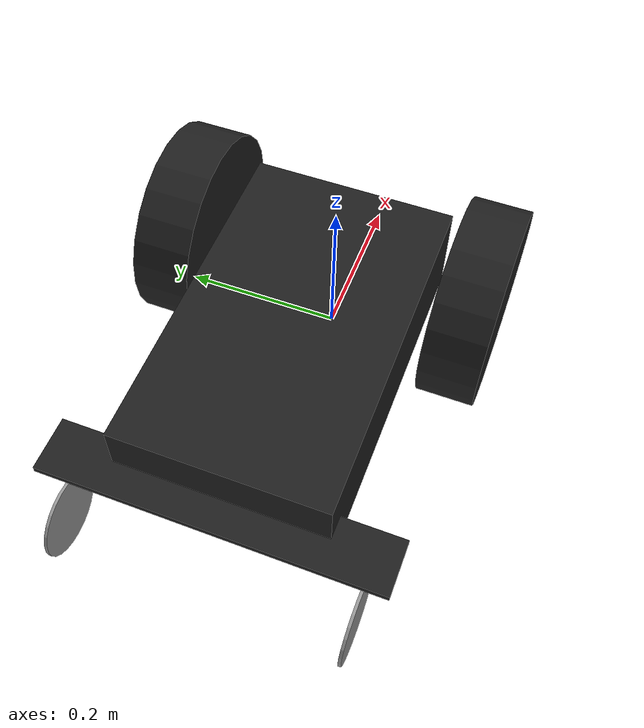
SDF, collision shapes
<sdf version='1.6'>
  <model name='2WD_rover_robotics'>
    <link name='base_footprint'>
      <pose frame=''>0 0 0 0 -0 0</pose>
      <inertial>
        <pose frame=''>-0.151308 0 0.144308 0 -0 0</pose>
        <mass>9.65</mass>
        <inertia>
          <ixx>0.091747</ixx>
          <ixy>2.64698e-23</ixy>
          <ixz>-0.00888848</ixz>
          <iyy>0.18812</iyy>
          <iyz>0</iyz>
          <izz>0.199045</izz>
        </inertia>
      </inertial>
      <collision name='base_footprint_fixed_joint_lump__base_link_collision'>
        <pose frame=''>-0.142 0 0.12 0 -0 0</pose>
        <geometry>
          <box>
            <size>0.42 0.25 0.12</size>
          </box>
        </geometry>
        <surface>
          <contact>
            <ode/>
          </contact>
          <friction>
            <ode/>
          </friction>
        </surface>
      </collision>
      <collision name='base_footprint_fixed_joint_lump__sheetmetal_link_collision_1'>
        <pose frame=''>-0.357 0 0.12 0 -0 0</pose>
        <geometry>
          <box>
            <size>0.065 0.4 0.008</size>
          </box>
        </geometry>
        <surface>
          <contact>
            <ode/>
          </contact>
          <friction>
            <ode/>
          </friction>
        </surface>
      </collision>
      <visual name='base_footprint_fixed_joint_lump__base_link_visual'>
        <pose frame=''>-0.142 0 0.175 0 -0 1.57</pose>
        <geometry>
          <mesh>
            <scale>1 1 1</scale>
            <uri>model://2WDRover/meshes/2WD_OpenRover.stl</uri>
          </mesh>
        </geometry>
        <material>
          <script>
            <name>Gazebo/FlatBlack</name>
            <uri>file://media/materials/scripts/gazebo.material</uri>
          </script>
        </material>
      </visual>
      <visual name='base_footprint_fixed_joint_lump__plate_link_visual_1'>
        <pose frame=''>-0.1365 0 0.247 0 -0 0</pose>
        <geometry>
          <box>
            <size>0.381 0.254 0.005</size>
          </box>
        </geometry>
        <material>
          <script>
            <name>Gazebo/GreyTransparent</name>
            <uri>file://media/materials/scripts/gazebo.material</uri>
          </script>
        </material>
      </visual>
      <visual name='base_footprint_fixed_joint_lump__cpu_link_visual_2'>
        <pose frame=''>-0.1397 0 0.2745 0 -0 0</pose>
        <geometry>
          <box>
            <size>0.111 0.117 0.05</size>
          </box>
        </geometry>
        <material>
          <script>
            <name>Gazebo/DarkGrey</name>
            <uri>file://media/materials/scripts/gazebo.material</uri>
          </script>
        </material>
      </visual>
      <visual name='base_footprint_fixed_joint_lump__lidar_link_visual_3'>
        <pose frame=''>-0.03175 0 0.338 0 -0 3.14</pose>
        <geometry>
          <cylinder>
            <length>0.0476</length>
            <radius>0.0381</radius>
          </cylinder>
        </geometry>
        <material>
          <script>
            <name>Gazebo/DarkGrey</name>
            <uri>file://media/materials/scripts/gazebo.material</uri>
          </script>
        </material>
      </visual>
      <visual name='base_footprint_fixed_joint_lump__imu_link_visual_4'>
        <pose frame=''>0 0 0.2496 0 -0 0</pose>
        <geometry>
          <box>
            <size>0.01 0.01 0.002</size>
          </box>
        </geometry>
        <material>
          <script>
            <name>Gazebo/Blue</name>
            <uri>file://media/materials/scripts/gazebo.material</uri>
          </script>
        </material>
      </visual>
      <visual name='base_footprint_fixed_joint_lump__sheetmetal_link_visual_5'>
        <pose frame=''>-0.35 0 0.12 1.57 0 -1.57</pose>
        <geometry>
          <mesh>
            <scale>1 1 1</scale>
            <uri>model://2WDRover/meshes/sheetmetal_part.stl</uri>
          </mesh>
        </geometry>
        <material>
          <script>
            <name>Gazebo/FlatBlack</name>
            <uri>file://media/materials/scripts/gazebo.material</uri>
          </script>
        </material>
      </visual>
      <velocity_decay/>
      <velocity_decay/>
      <velocity_decay/>
      <velocity_decay/>
      <sensor name='gazebo_lidar' type='ray'>
        <update_rate>12</update_rate>
        <plugin name='gazebo_lidar' filename='libgazebo_ros_ray_sensor.so'>
          <ros>
            <argument>~/out:=scan</argument>
            <namespace/>
          </ros>
          <output_type>sensor_msgs/LaserScan</output_type>
          <frame_name>lidar_link</frame_name>
        </plugin>
        <ray>
          <scan>
            <horizontal>
              <samples>360</samples>
              <resolution>1</resolution>
              <min_angle>-3.14159</min_angle>
              <max_angle>3.14159</max_angle>
            </horizontal>
          </scan>
          <range>
            <min>0.12</min>
            <max>3.5</max>
            <resolution>0.015</resolution>
          </range>
          <noise>
            <type>gaussian</type>
            <mean>0</mean>
            <stddev>0.01</stddev>
          </noise>
        </ray>
        <pose frame=''>-0.03175 0 0.338 0 -0 3.14</pose>
      </sensor>
      <velocity_decay/>
      <sensor name='gazebo_imu' type='imu'>
        <always_on>1</always_on>
        <update_rate>30</update_rate>
        <plugin name='gazebo_imu' filename='libgazebo_ros_imu_sensor.so'>
          <ros>
            <namespace>/imu</namespace>
            <argument>~/out:=data</argument>
          </ros>
          <frame_name>imu_link</frame_name>
        </plugin>
        <imu>
          <angular_velocity>
            <x>
              <noise type='gaussian'>
                <mean>0</mean>
                <stddev>0.0052</stddev>
              </noise>
            </x>
            <y>
              <noise type='gaussian'>
                <mean>0</mean>
                <stddev>0.0052</stddev>
              </noise>
            </y>
            <z>
              <noise type='gaussian'>
                <mean>0</mean>
                <stddev>0.0052</stddev>
              </noise>
            </z>
          </angular_velocity>
          <linear_acceleration>
            <x>
              <noise type='gaussian'>
                <mean>0</mean>
                <stddev>0.0015</stddev>
              </noise>
            </x>
            <y>
              <noise type='gaussian'>
                <mean>0</mean>
                <stddev>0.0015</stddev>
              </noise>
            </y>
            <z>
              <noise type='gaussian'>
                <mean>0</mean>
                <stddev>0.0015</stddev>
              </noise>
            </z>
          </linear_acceleration>
          <angular_velocity/>
          <linear_acceleration/>
        </imu>
        <pose frame=''>0 0 0.2496 0 -0 0</pose>
      </sensor>
      <gravity>1</gravity>
      <velocity_decay/>
    </link>
    <link name='caster_back_left_link'>
      <pose frame=''>-0.36 0.17 0.11 0 -0 0</pose>
      <inertial>
        <pose frame=''>-0.005 0 -0.03 0 -0 0</pose>
        <mass>0.41</mass>
        <inertia>
          <ixx>0.0003841</ixx>
          <ixy>0</ixy>
          <ixz>0</ixz>
          <iyy>0.0004592</iyy>
          <iyz>0</iyz>
          <izz>0.0002135</izz>
        </inertia>
      </inertial>
      <collision name='caster_back_left_link_collision'>
        <pose frame=''>-0.035 0 -0.065 1.57 0 3.14</pose>
        <geometry>
          <cylinder>
            <length>0.0035</length>
            <radius>0.05</radius>
          </cylinder>
        </geometry>
        <surface>
          <contact>
            <ode>
              <kp>200000</kp>
            </ode>
          </contact>
          <friction>
            <ode>
              <mu>0.1</mu>
              <mu2>0.6</mu2>
            </ode>
          </friction>
        </surface>
      </collision>
      <visual name='caster_back_left_link_visual'>
        <pose frame=''>0 0 0 1.57 0 3.14</pose>
        <geometry>
          <mesh>
            <scale>1 1 1</scale>
            <uri>model://2WDRover/meshes/left_caster_wheel.stl</uri>
          </mesh>
        </geometry>
        <material>
          <script>
            <name>Gazebo/Grey</name>
            <uri>file://media/materials/scripts/gazebo.material</uri>
          </script>
        </material>
      </visual>
      <gravity>1</gravity>
      <velocity_decay/>
    </link>
    <joint name='caster_back_left_joint' type='revolute'>
      <child>caster_back_left_link</child>
      <parent>base_footprint</parent>
      <axis>
        <xyz>0 0 1</xyz>
        <limit>
          <lower>-1e+16</lower>
          <upper>1e+16</upper>
        </limit>
        <dynamics>
          <damping>0.1</damping>
          <friction>0.01</friction>
          <spring_reference>0</spring_reference>
          <spring_stiffness>0</spring_stiffness>
        </dynamics>
        <use_parent_model_frame>1</use_parent_model_frame>
      </axis>
    </joint>
    <link name='caster_back_right_link'>
      <pose frame=''>-0.36 -0.17 0.11 0 -0 0</pose>
      <inertial>
        <pose frame=''>-0.005 0 -0.03 0 -0 0</pose>
        <mass>0.41</mass>
        <inertia>
          <ixx>0.0003841</ixx>
          <ixy>0</ixy>
          <ixz>0</ixz>
          <iyy>0.0004592</iyy>
          <iyz>0</iyz>
          <izz>0.0002135</izz>
        </inertia>
      </inertial>
      <collision name='caster_back_right_link_collision'>
        <pose frame=''>-0.035 0 -0.065 1.57 0 3.14</pose>
        <geometry>
          <cylinder>
            <length>0.0035</length>
            <radius>0.05</radius>
          </cylinder>
        </geometry>
        <surface>
          <contact>
            <ode>
              <kp>200000</kp>
            </ode>
          </contact>
          <friction>
            <ode>
              <mu>0.1</mu>
              <mu2>0.6</mu2>
            </ode>
          </friction>
        </surface>
      </collision>
      <visual name='caster_back_right_link_visual'>
        <pose frame=''>0 0 0 1.57 0 3.14</pose>
        <geometry>
          <mesh>
            <scale>1 1 1</scale>
            <uri>model://2WDRover/meshes/right_caster_wheel.stl</uri>
          </mesh>
        </geometry>
        <material>
          <script>
            <name>Gazebo/Grey</name>
            <uri>file://media/materials/scripts/gazebo.material</uri>
          </script>
        </material>
      </visual>
      <gravity>1</gravity>
      <velocity_decay/>
    </link>
    <joint name='caster_back_right_joint' type='revolute'>
      <child>caster_back_right_link</child>
      <parent>base_footprint</parent>
      <axis>
        <xyz>0 0 1</xyz>
        <limit>
          <lower>-1e+16</lower>
          <upper>1e+16</upper>
        </limit>
        <dynamics>
          <damping>0.1</damping>
          <friction>0.01</friction>
          <spring_reference>0</spring_reference>
          <spring_stiffness>0</spring_stiffness>
        </dynamics>
        <use_parent_model_frame>1</use_parent_model_frame>
      </axis>
    </joint>
    <link name='wheel_left_link'>
      <pose frame=''>0 0.179 0.12 -1.57 0 0</pose>
      <inertial>
        <pose frame=''>0 0 0 0 -0 3.14</pose>
        <mass>1.525</mass>
        <inertia>
          <ixx>0.006723</ixx>
          <ixy>0</ixy>
          <ixz>0</ixz>
          <iyy>0.006723</iyy>
          <iyz>0</iyz>
          <izz>0.0122</izz>
        </inertia>
      </inertial>
      <collision name='wheel_left_link_collision'>
        <pose frame=''>0 0 0 0 -0 3.14</pose>
        <geometry>
          <cylinder>
            <length>0.07</length>
            <radius>0.12</radius>
          </cylinder>
        </geometry>
        <surface>
          <contact>
            <ode>
              <kp>300000</kp>
            </ode>
          </contact>
          <friction>
            <ode>
              <mu>0.7</mu>
              <mu2>1</mu2>
            </ode>
          </friction>
        </surface>
      </collision>
      <visual name='wheel_left_link_visual'>
        <pose frame=''>0 0 0 -1.57 0 0</pose>
        <geometry>
          <mesh>
            <scale>1 1 1</scale>
            <uri>model://2WDRover/meshes/left_wheel.stl</uri>
          </mesh>
        </geometry>
        <material>
          <script>
            <name>Gazebo/Black</name>
            <uri>file://media/materials/scripts/gazebo.material</uri>
          </script>
        </material>
      </visual>
      <gravity>1</gravity>
      <velocity_decay/>
    </link>
    <joint name='wheel_left_joint' type='revolute'>
      <child>wheel_left_link</child>
      <parent>base_footprint</parent>
      <axis>
        <xyz>0 1 0.000796</xyz>
        <limit>
          <lower>-1e+16</lower>
          <upper>1e+16</upper>
        </limit>
        <dynamics>
          <spring_reference>0</spring_reference>
          <spring_stiffness>0</spring_stiffness>
        </dynamics>
        <use_parent_model_frame>1</use_parent_model_frame>
      </axis>
    </joint>
    <link name='wheel_right_link'>
      <pose frame=''>0 -0.179 0.12 -1.57 0 0</pose>
      <inertial>
        <pose frame=''>0 0 0 0 -0 0</pose>
        <mass>1.525</mass>
        <inertia>
          <ixx>0.006723</ixx>
          <ixy>0</ixy>
          <ixz>0</ixz>
          <iyy>0.006723</iyy>
          <iyz>0</iyz>
          <izz>0.0122</izz>
        </inertia>
      </inertial>
      <collision name='wheel_right_link_collision'>
        <pose frame=''>0 0 0 0 -0 0</pose>
        <geometry>
          <cylinder>
            <length>0.07</length>
            <radius>0.12</radius>
          </cylinder>
        </geometry>
        <surface>
          <contact>
            <ode>
              <kp>300000</kp>
            </ode>
          </contact>
          <friction>
            <ode>
              <mu>0.7</mu>
              <mu2>1</mu2>
            </ode>
          </friction>
        </surface>
      </collision>
      <visual name='wheel_right_link_visual'>
        <pose frame=''>0 0 0 1.57 -0 0</pose>
        <geometry>
          <mesh>
            <scale>1 1 1</scale>
            <uri>model://2WDRover/meshes/right_wheel.stl</uri>
          </mesh>
        </geometry>
        <material>
          <script>
            <name>Gazebo/Black</name>
            <uri>file://media/materials/scripts/gazebo.material</uri>
          </script>
        </material>
      </visual>
      <gravity>1</gravity>
      <velocity_decay/>
    </link>
    <joint name='wheel_right_joint' type='revolute'>
      <child>wheel_right_link</child>
      <parent>base_footprint</parent>
      <axis>
        <xyz>0 1 0.000796</xyz>
        <limit>
          <lower>-1e+16</lower>
          <upper>1e+16</upper>
        </limit>
        <dynamics>
          <spring_reference>0</spring_reference>
          <spring_stiffness>0</spring_stiffness>
        </dynamics>
        <use_parent_model_frame>1</use_parent_model_frame>
      </axis>
    </joint>
    <plugin name='gazebo_base_controller' filename='libgazebo_ros_diff_drive.so'>
      <odometry_frame>odom</odometry_frame>
      <publish_odom>1</publish_odom>
      <publish_odom_tf>0</publish_odom_tf>
      <robot_base_frame>base_footprint</robot_base_frame>
      <publish_wheel_tf>0</publish_wheel_tf>
      <update_rate>15.0</update_rate>
      <left_joint>wheel_left_joint</left_joint>
      <right_joint>wheel_right_joint</right_joint>
      <wheel_separation>0.358</wheel_separation>
      <wheel_diameter>0.24</wheel_diameter>
      <max_wheel_acceleration>0.7</max_wheel_acceleration>
      <max_wheel_torque>8</max_wheel_torque>
      <ros>
        <argument>odom:=odom_raw</argument>
      </ros>
    </plugin>
    <static>0</static>
    <plugin name='gazebo_joint_publisher' filename='libgazebo_ros_joint_state_publisher.so'>
      <joint_name>wheel_left_joint</joint_name>
      <joint_name>wheel_right_joint</joint_name>
      <joint_name>caster_back_left_joint</joint_name>
      <joint_name>caster_back_right_joint</joint_name>
      <update_rate>30.0</update_rate>
    </plugin>
  </model>
</sdf>
